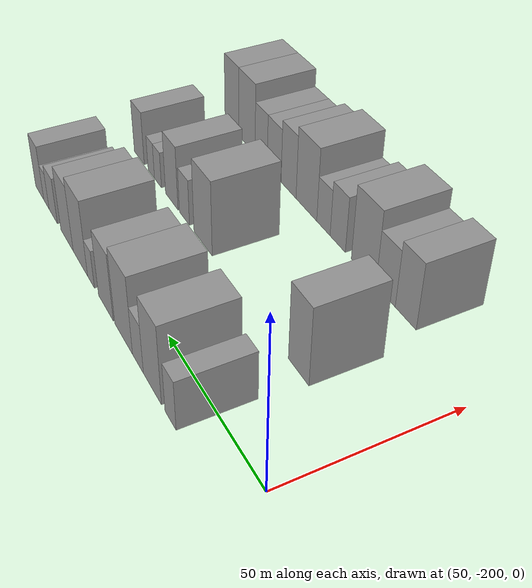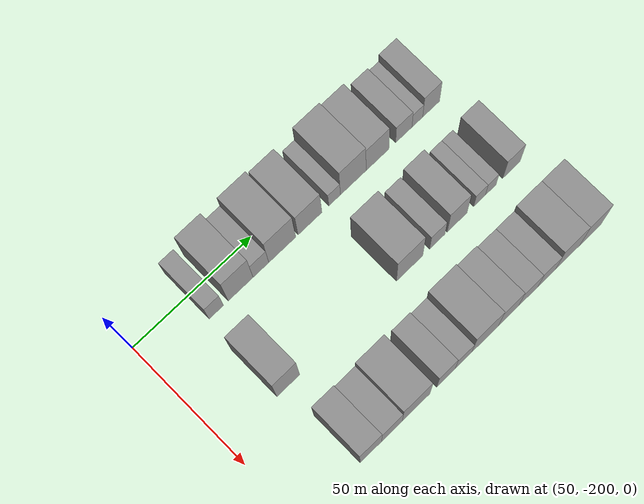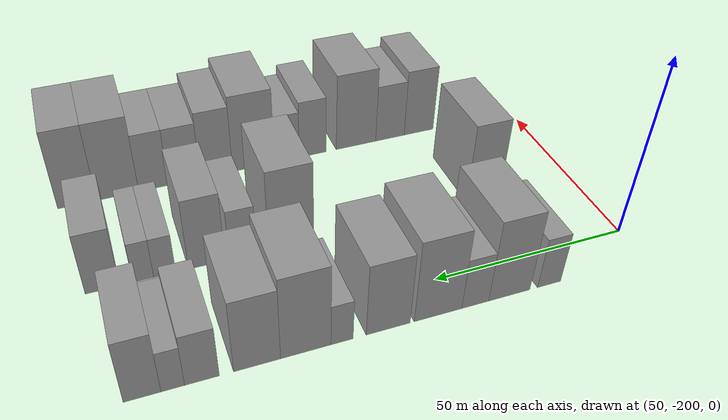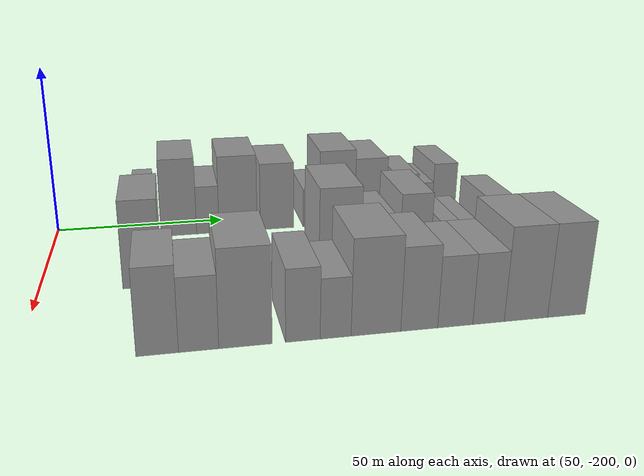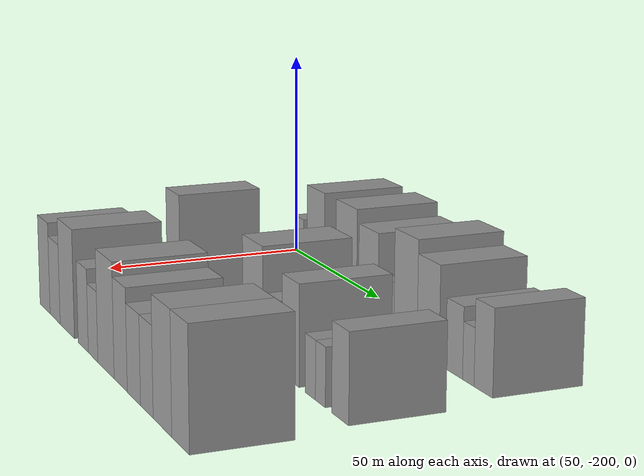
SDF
<sdf version="1.6">
 <world name="default">
  <model name="building_21">
   <static>1</static>
   <pose>50.0000 -174.1144 0 0.000000 0.000000 0.000000</pose>
   <link name="link">
    <pose>0 0 7.50 0 0 0</pose>
    <collision name="collision"><geometry><box><size>20.0000 6.0914 15.0000</size></box></geometry></collision>
    <visual name="visual">
     <cast_shadows>0</cast_shadows>
     <geometry><box><size>20.0000 6.0914 15.0000</size></box></geometry>
     <material>
      <script>
       <uri>model://grey_wall/materials/scripts</uri>
       <uri>model://grey_wall/materials/textures</uri>
       <name>vrc/grey_wall</name>
      </script>
     </material>
    </visual>
   </link>
  </model>
  <model name="building_22">
   <static>1</static>
   <pose>50.0000 -163.7827 0 0.000000 0.000000 0.000000</pose>
   <link name="link">
    <pose>0 0 12.00 0 0 0</pose>
    <collision name="collision"><geometry><box><size>20.0000 10.5719 24.0000</size></box></geometry></collision>
    <visual name="visual">
     <cast_shadows>0</cast_shadows>
     <geometry><box><size>20.0000 10.5719 24.0000</size></box></geometry>
     <material>
      <script>
       <uri>model://grey_wall/materials/scripts</uri>
       <uri>model://grey_wall/materials/textures</uri>
       <name>vrc/grey_wall</name>
      </script>
     </material>
    </visual>
   </link>
  </model>
  <model name="building_23">
   <static>1</static>
   <pose>50.0000 -155.1329 0 0.000000 0.000000 0.000000</pose>
   <link name="link">
    <pose>0 0 7.50 0 0 0</pose>
    <collision name="collision"><geometry><box><size>20.0000 6.7278 15.0000</size></box></geometry></collision>
    <visual name="visual">
     <cast_shadows>0</cast_shadows>
     <geometry><box><size>20.0000 6.7278 15.0000</size></box></geometry>
     <material>
      <script>
       <uri>model://grey_wall/materials/scripts</uri>
       <uri>model://grey_wall/materials/textures</uri>
       <name>vrc/grey_wall</name>
      </script>
     </material>
    </visual>
   </link>
  </model>
  <model name="building_24">
   <static>1</static>
   <pose>50.0000 -145.9663 0 0.000000 0.000000 0.000000</pose>
   <link name="link">
    <pose>0 0 12.00 0 0 0</pose>
    <collision name="collision"><geometry><box><size>20.0000 11.6054 24.0000</size></box></geometry></collision>
    <visual name="visual">
     <cast_shadows>0</cast_shadows>
     <geometry><box><size>20.0000 11.6054 24.0000</size></box></geometry>
     <material>
      <script>
       <uri>model://grey_wall/materials/scripts</uri>
       <uri>model://grey_wall/materials/textures</uri>
       <name>vrc/grey_wall</name>
      </script>
     </material>
    </visual>
   </link>
  </model>
  <model name="building_25">
   <static>1</static>
   <pose>50.0000 -133.9820 0 0.000000 0.000000 0.000000</pose>
   <link name="link">
    <pose>0 0 10.50 0 0 0</pose>
    <collision name="collision"><geometry><box><size>20.0000 10.3632 21.0000</size></box></geometry></collision>
    <visual name="visual">
     <cast_shadows>0</cast_shadows>
     <geometry><box><size>20.0000 10.3632 21.0000</size></box></geometry>
     <material>
      <script>
       <uri>model://grey_wall/materials/scripts</uri>
       <uri>model://grey_wall/materials/textures</uri>
       <name>vrc/grey_wall</name>
      </script>
     </material>
    </visual>
   </link>
  </model>
  <model name="building_26">
   <static>1</static>
   <pose>50.0000 -123.2500 0 0.000000 0.000000 0.000000</pose>
   <link name="link">
    <pose>0 0 6.00 0 0 0</pose>
    <collision name="collision"><geometry><box><size>20.0000 5.1008 12.0000</size></box></geometry></collision>
    <visual name="visual">
     <cast_shadows>0</cast_shadows>
     <geometry><box><size>20.0000 5.1008 12.0000</size></box></geometry>
     <material>
      <script>
       <uri>model://grey_wall/materials/scripts</uri>
       <uri>model://grey_wall/materials/textures</uri>
       <name>vrc/grey_wall</name>
      </script>
     </material>
    </visual>
   </link>
  </model>
  <model name="building_27">
   <static>1</static>
   <pose>50.0000 -115.0750 0 0.000000 0.000000 0.000000</pose>
   <link name="link">
    <pose>0 0 12.00 0 0 0</pose>
    <collision name="collision"><geometry><box><size>20.0000 11.2492 24.0000</size></box></geometry></collision>
    <visual name="visual">
     <cast_shadows>0</cast_shadows>
     <geometry><box><size>20.0000 11.2492 24.0000</size></box></geometry>
     <material>
      <script>
       <uri>model://grey_wall/materials/scripts</uri>
       <uri>model://grey_wall/materials/textures</uri>
       <name>vrc/grey_wall</name>
      </script>
     </material>
    </visual>
   </link>
  </model>
  <model name="building_28">
   <static>1</static>
   <pose>50.0000 -104.3734 0 0.000000 0.000000 0.000000</pose>
   <link name="link">
    <pose>0 0 10.50 0 0 0</pose>
    <collision name="collision"><geometry><box><size>20.0000 10.1541 21.0000</size></box></geometry></collision>
    <visual name="visual">
     <cast_shadows>0</cast_shadows>
     <geometry><box><size>20.0000 10.1541 21.0000</size></box></geometry>
     <material>
      <script>
       <uri>model://grey_wall/materials/scripts</uri>
       <uri>model://grey_wall/materials/textures</uri>
       <name>vrc/grey_wall</name>
      </script>
     </material>
    </visual>
   </link>
  </model>
  <model name="building_29">
   <static>1</static>
   <pose>50.0000 -92.6563 0 0.000000 0.000000 0.000000</pose>
   <link name="link">
    <pose>0 0 7.50 0 0 0</pose>
    <collision name="collision"><geometry><box><size>20.0000 7.2801 15.0000</size></box></geometry></collision>
    <visual name="visual">
     <cast_shadows>0</cast_shadows>
     <geometry><box><size>20.0000 7.2801 15.0000</size></box></geometry>
     <material>
      <script>
       <uri>model://grey_wall/materials/scripts</uri>
       <uri>model://grey_wall/materials/textures</uri>
       <name>vrc/grey_wall</name>
      </script>
     </material>
    </visual>
   </link>
  </model>
  <model name="building_30">
   <static>1</static>
   <pose>50.0000 -86.5991 0 0.000000 0.000000 0.000000</pose>
   <link name="link">
    <pose>0 0 6.00 0 0 0</pose>
    <collision name="collision"><geometry><box><size>20.0000 4.8341 12.0000</size></box></geometry></collision>
    <visual name="visual">
     <cast_shadows>0</cast_shadows>
     <geometry><box><size>20.0000 4.8341 12.0000</size></box></geometry>
     <material>
      <script>
       <uri>model://grey_wall/materials/scripts</uri>
       <uri>model://grey_wall/materials/textures</uri>
       <name>vrc/grey_wall</name>
      </script>
     </material>
    </visual>
   </link>
  </model>
  <model name="building_31">
   <static>1</static>
   <pose>50.0000 -80.3739 0 0.000000 0.000000 0.000000</pose>
   <link name="link">
    <pose>0 0 9.00 0 0 0</pose>
    <collision name="collision"><geometry><box><size>20.0000 7.6165 18.0000</size></box></geometry></collision>
    <visual name="visual">
     <cast_shadows>0</cast_shadows>
     <geometry><box><size>20.0000 7.6165 18.0000</size></box></geometry>
     <material>
      <script>
       <uri>model://grey_wall/materials/scripts</uri>
       <uri>model://grey_wall/materials/textures</uri>
       <name>vrc/grey_wall</name>
      </script>
     </material>
    </visual>
   </link>
  </model>
  <model name="building_100">
   <static>1</static>
   <pose>82.0000 -174.0727 0 0.000000 0.000000 0.000000</pose>
   <link name="link">
    <pose>0 0 12.00 0 0 0</pose>
    <collision name="collision"><geometry><box><size>20.0000 9.6658 24.0000</size></box></geometry></collision>
    <visual name="visual">
     <cast_shadows>0</cast_shadows>
     <geometry><box><size>20.0000 9.6658 24.0000</size></box></geometry>
     <material>
      <script>
       <uri>model://grey_wall/materials/scripts</uri>
       <uri>model://grey_wall/materials/textures</uri>
       <name>vrc/grey_wall</name>
      </script>
     </material>
    </visual>
   </link>
  </model>
  <model name="building_101">
   <static>1</static>
   <pose>82.0000 -121.9243 0 0.000000 0.000000 0.000000</pose>
   <link name="link">
    <pose>0 0 12.00 0 0 0</pose>
    <collision name="collision"><geometry><box><size>20.0000 11.5437 24.0000</size></box></geometry></collision>
    <visual name="visual">
     <cast_shadows>0</cast_shadows>
     <geometry><box><size>20.0000 11.5437 24.0000</size></box></geometry>
     <material>
      <script>
       <uri>model://grey_wall/materials/scripts</uri>
       <uri>model://grey_wall/materials/textures</uri>
       <name>vrc/grey_wall</name>
      </script>
     </material>
    </visual>
   </link>
  </model>
  <model name="building_102">
   <static>1</static>
   <pose>82.0000 -109.7860 0 0.000000 0.000000 0.000000</pose>
   <link name="link">
    <pose>0 0 7.50 0 0 0</pose>
    <collision name="collision"><geometry><box><size>20.0000 6.7328 15.0000</size></box></geometry></collision>
    <visual name="visual">
     <cast_shadows>0</cast_shadows>
     <geometry><box><size>20.0000 6.7328 15.0000</size></box></geometry>
     <material>
      <script>
       <uri>model://grey_wall/materials/scripts</uri>
       <uri>model://grey_wall/materials/textures</uri>
       <name>vrc/grey_wall</name>
      </script>
     </material>
    </visual>
   </link>
  </model>
  <model name="building_103">
   <static>1</static>
   <pose>82.0000 -101.0111 0 0.000000 0.000000 0.000000</pose>
   <link name="link">
    <pose>0 0 10.50 0 0 0</pose>
    <collision name="collision"><geometry><box><size>20.0000 8.8170 21.0000</size></box></geometry></collision>
    <visual name="visual">
     <cast_shadows>0</cast_shadows>
     <geometry><box><size>20.0000 8.8170 21.0000</size></box></geometry>
     <material>
      <script>
       <uri>model://grey_wall/materials/scripts</uri>
       <uri>model://grey_wall/materials/textures</uri>
       <name>vrc/grey_wall</name>
      </script>
     </material>
    </visual>
   </link>
  </model>
  <model name="building_104">
   <static>1</static>
   <pose>82.0000 -91.0064 0 0.000000 0.000000 0.000000</pose>
   <link name="link">
    <pose>0 0 6.00 0 0 0</pose>
    <collision name="collision"><geometry><box><size>20.0000 5.1925 12.0000</size></box></geometry></collision>
    <visual name="visual">
     <cast_shadows>0</cast_shadows>
     <geometry><box><size>20.0000 5.1925 12.0000</size></box></geometry>
     <material>
      <script>
       <uri>model://grey_wall/materials/scripts</uri>
       <uri>model://grey_wall/materials/textures</uri>
       <name>vrc/grey_wall</name>
      </script>
     </material>
    </visual>
   </link>
  </model>
  <model name="building_105">
   <static>1</static>
   <pose>82.0000 -85.9991 0 0.000000 0.000000 0.000000</pose>
   <link name="link">
    <pose>0 0 6.00 0 0 0</pose>
    <collision name="collision"><geometry><box><size>20.0000 4.8220 12.0000</size></box></geometry></collision>
    <visual name="visual">
     <cast_shadows>0</cast_shadows>
     <geometry><box><size>20.0000 4.8220 12.0000</size></box></geometry>
     <material>
      <script>
       <uri>model://grey_wall/materials/scripts</uri>
       <uri>model://grey_wall/materials/textures</uri>
       <name>vrc/grey_wall</name>
      </script>
     </material>
    </visual>
   </link>
  </model>
  <model name="building_106">
   <static>1</static>
   <pose>82.0000 -76.6664 0 0.000000 0.000000 0.000000</pose>
   <link name="link">
    <pose>0 0 9.00 0 0 0</pose>
    <collision name="collision"><geometry><box><size>20.0000 7.8436 18.0000</size></box></geometry></collision>
    <visual name="visual">
     <cast_shadows>0</cast_shadows>
     <geometry><box><size>20.0000 7.8436 18.0000</size></box></geometry>
     <material>
      <script>
       <uri>model://grey_wall/materials/scripts</uri>
       <uri>model://grey_wall/materials/textures</uri>
       <name>vrc/grey_wall</name>
      </script>
     </material>
    </visual>
   </link>
  </model>
  <model name="building_172">
   <static>1</static>
   <pose>114.0000 -170.3078 0 0.000000 0.000000 0.000000</pose>
   <link name="link">
    <pose>0 0 10.50 0 0 0</pose>
    <collision name="collision"><geometry><box><size>20.0000 9.0661 21.0000</size></box></geometry></collision>
    <visual name="visual">
     <cast_shadows>0</cast_shadows>
     <geometry><box><size>20.0000 9.0661 21.0000</size></box></geometry>
     <material>
      <script>
       <uri>model://grey_wall/materials/scripts</uri>
       <uri>model://grey_wall/materials/textures</uri>
       <name>vrc/grey_wall</name>
      </script>
     </material>
    </visual>
   </link>
  </model>
  <model name="building_173">
   <static>1</static>
   <pose>114.0000 -161.4042 0 0.000000 0.000000 0.000000</pose>
   <link name="link">
    <pose>0 0 9.00 0 0 0</pose>
    <collision name="collision"><geometry><box><size>20.0000 8.7411 18.0000</size></box></geometry></collision>
    <visual name="visual">
     <cast_shadows>0</cast_shadows>
     <geometry><box><size>20.0000 8.7411 18.0000</size></box></geometry>
     <material>
      <script>
       <uri>model://grey_wall/materials/scripts</uri>
       <uri>model://grey_wall/materials/textures</uri>
       <name>vrc/grey_wall</name>
      </script>
     </material>
    </visual>
   </link>
  </model>
  <model name="building_174">
   <static>1</static>
   <pose>114.0000 -151.1067 0 0.000000 0.000000 0.000000</pose>
   <link name="link">
    <pose>0 0 12.00 0 0 0</pose>
    <collision name="collision"><geometry><box><size>20.0000 11.8539 24.0000</size></box></geometry></collision>
    <visual name="visual">
     <cast_shadows>0</cast_shadows>
     <geometry><box><size>20.0000 11.8539 24.0000</size></box></geometry>
     <material>
      <script>
       <uri>model://grey_wall/materials/scripts</uri>
       <uri>model://grey_wall/materials/textures</uri>
       <name>vrc/grey_wall</name>
      </script>
     </material>
    </visual>
   </link>
  </model>
  <model name="building_175">
   <static>1</static>
   <pose>114.0000 -138.2420 0 0.000000 0.000000 0.000000</pose>
   <link name="link">
    <pose>0 0 9.00 0 0 0</pose>
    <collision name="collision"><geometry><box><size>20.0000 7.8756 18.0000</size></box></geometry></collision>
    <visual name="visual">
     <cast_shadows>0</cast_shadows>
     <geometry><box><size>20.0000 7.8756 18.0000</size></box></geometry>
     <material>
      <script>
       <uri>model://grey_wall/materials/scripts</uri>
       <uri>model://grey_wall/materials/textures</uri>
       <name>vrc/grey_wall</name>
      </script>
     </material>
    </visual>
   </link>
  </model>
  <model name="building_176">
   <static>1</static>
   <pose>114.0000 -130.7274 0 0.000000 0.000000 0.000000</pose>
   <link name="link">
    <pose>0 0 7.50 0 0 0</pose>
    <collision name="collision"><geometry><box><size>20.0000 7.1535 15.0000</size></box></geometry></collision>
    <visual name="visual">
     <cast_shadows>0</cast_shadows>
     <geometry><box><size>20.0000 7.1535 15.0000</size></box></geometry>
     <material>
      <script>
       <uri>model://grey_wall/materials/scripts</uri>
       <uri>model://grey_wall/materials/textures</uri>
       <name>vrc/grey_wall</name>
      </script>
     </material>
    </visual>
   </link>
  </model>
  <model name="building_177">
   <static>1</static>
   <pose>114.0000 -121.3071 0 0.000000 0.000000 0.000000</pose>
   <link name="link">
    <pose>0 0 12.00 0 0 0</pose>
    <collision name="collision"><geometry><box><size>20.0000 11.6871 24.0000</size></box></geometry></collision>
    <visual name="visual">
     <cast_shadows>0</cast_shadows>
     <geometry><box><size>20.0000 11.6871 24.0000</size></box></geometry>
     <material>
      <script>
       <uri>model://grey_wall/materials/scripts</uri>
       <uri>model://grey_wall/materials/textures</uri>
       <name>vrc/grey_wall</name>
      </script>
     </material>
    </visual>
   </link>
  </model>
  <model name="building_178">
   <static>1</static>
   <pose>114.0000 -111.0268 0 0.000000 0.000000 0.000000</pose>
   <link name="link">
    <pose>0 0 10.50 0 0 0</pose>
    <collision name="collision"><geometry><box><size>20.0000 8.8734 21.0000</size></box></geometry></collision>
    <visual name="visual">
     <cast_shadows>0</cast_shadows>
     <geometry><box><size>20.0000 8.8734 21.0000</size></box></geometry>
     <material>
      <script>
       <uri>model://grey_wall/materials/scripts</uri>
       <uri>model://grey_wall/materials/textures</uri>
       <name>vrc/grey_wall</name>
      </script>
     </material>
    </visual>
   </link>
  </model>
  <model name="building_179">
   <static>1</static>
   <pose>114.0000 -102.3050 0 0.000000 0.000000 0.000000</pose>
   <link name="link">
    <pose>0 0 9.00 0 0 0</pose>
    <collision name="collision"><geometry><box><size>20.0000 8.5702 18.0000</size></box></geometry></collision>
    <visual name="visual">
     <cast_shadows>0</cast_shadows>
     <geometry><box><size>20.0000 8.5702 18.0000</size></box></geometry>
     <material>
      <script>
       <uri>model://grey_wall/materials/scripts</uri>
       <uri>model://grey_wall/materials/textures</uri>
       <name>vrc/grey_wall</name>
      </script>
     </material>
    </visual>
   </link>
  </model>
  <model name="building_180">
   <static>1</static>
   <pose>114.0000 -94.1023 0 0.000000 0.000000 0.000000</pose>
   <link name="link">
    <pose>0 0 9.00 0 0 0</pose>
    <collision name="collision"><geometry><box><size>20.0000 7.8352 18.0000</size></box></geometry></collision>
    <visual name="visual">
     <cast_shadows>0</cast_shadows>
     <geometry><box><size>20.0000 7.8352 18.0000</size></box></geometry>
     <material>
      <script>
       <uri>model://grey_wall/materials/scripts</uri>
       <uri>model://grey_wall/materials/textures</uri>
       <name>vrc/grey_wall</name>
      </script>
     </material>
    </visual>
   </link>
  </model>
  <model name="building_181">
   <static>1</static>
   <pose>114.0000 -84.7124 0 0.000000 0.000000 0.000000</pose>
   <link name="link">
    <pose>0 0 12.00 0 0 0</pose>
    <collision name="collision"><geometry><box><size>20.0000 10.9444 24.0000</size></box></geometry></collision>
    <visual name="visual">
     <cast_shadows>0</cast_shadows>
     <geometry><box><size>20.0000 10.9444 24.0000</size></box></geometry>
     <material>
      <script>
       <uri>model://grey_wall/materials/scripts</uri>
       <uri>model://grey_wall/materials/textures</uri>
       <name>vrc/grey_wall</name>
      </script>
     </material>
    </visual>
   </link>
  </model>
  <model name="building_182">
   <static>1</static>
   <pose>114.0000 -74.3691 0 0.000000 0.000000 0.000000</pose>
   <link name="link">
    <pose>0 0 12.00 0 0 0</pose>
    <collision name="collision"><geometry><box><size>20.0000 9.7423 24.0000</size></box></geometry></collision>
    <visual name="visual">
     <cast_shadows>0</cast_shadows>
     <geometry><box><size>20.0000 9.7423 24.0000</size></box></geometry>
     <material>
      <script>
       <uri>model://grey_wall/materials/scripts</uri>
       <uri>model://grey_wall/materials/textures</uri>
       <name>vrc/grey_wall</name>
      </script>
     </material>
    </visual>
   </link>
  </model>
 </world>
</sdf>
